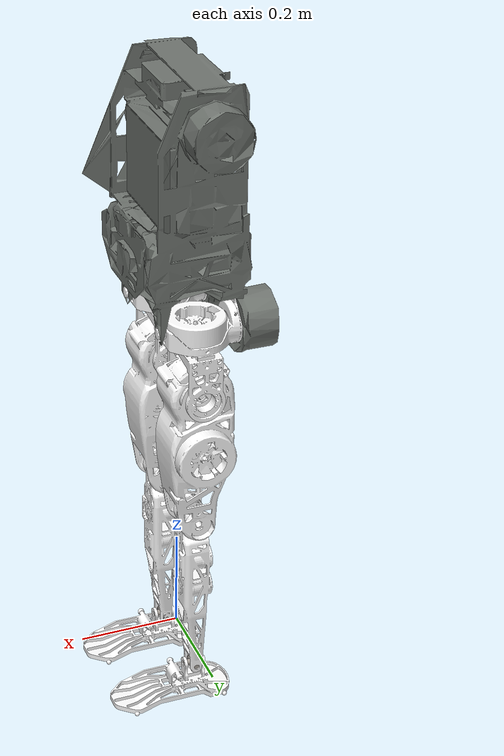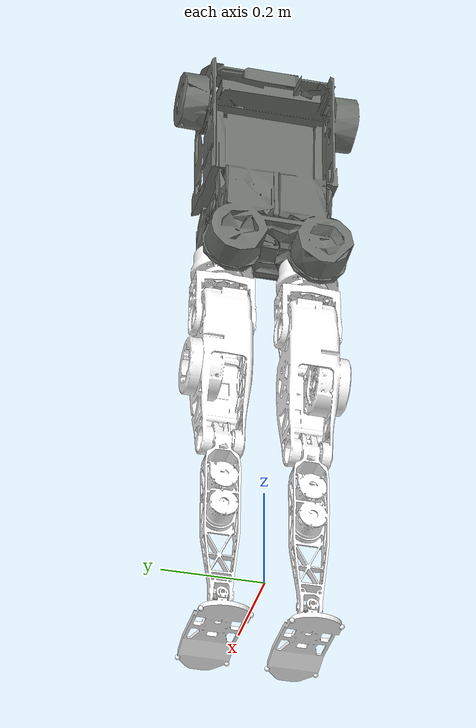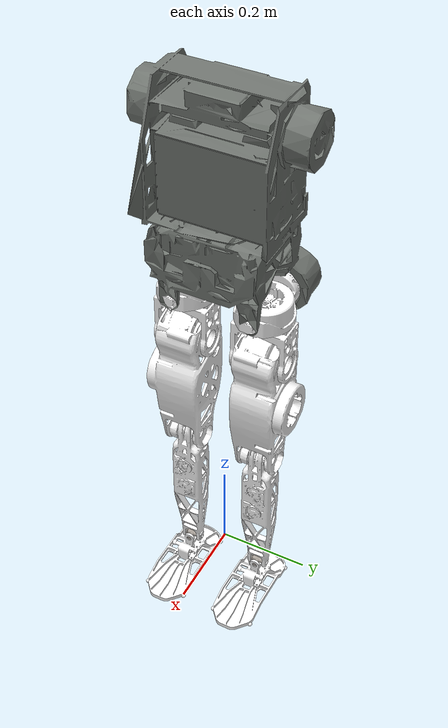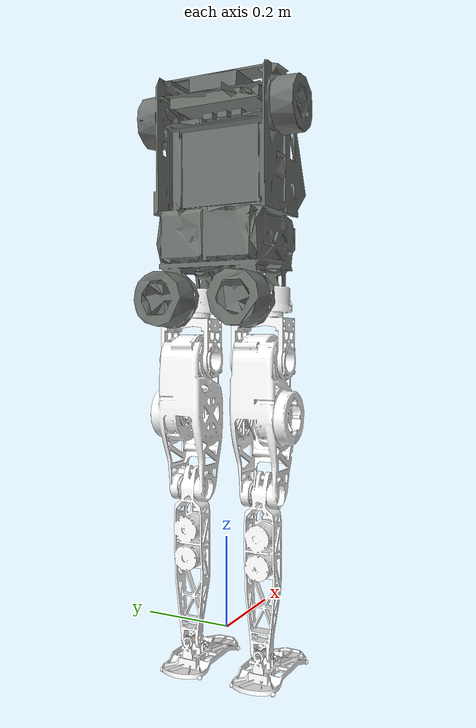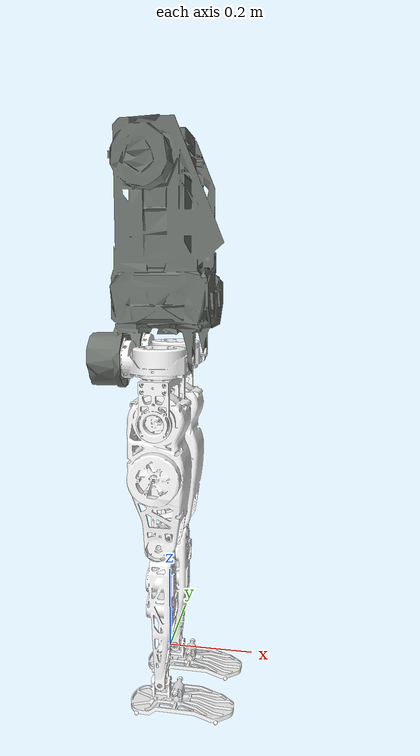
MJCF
<mujoco model="biped_s42">
  <compiler angle="radian" meshdir="../meshes/"/>
  <size njmax="500" nconmax="100" />

    <default>
        <joint limited='true'/>
    </default>

  <asset>
    <texture type="skybox" builtin="gradient" rgb1="0.4 0.6 0.8" width="128" height="128"/>
    <texture name="grid" type="2d" builtin="checker" rgb1=".1 .2 .3" rgb2=".2 .3 .4" width="300" height="300"/>
    <material name="grid" texture="grid" texrepeat="8 8" reflectance=".1"/>
    <mesh name="base_link" file="torso.STL"/>
    <mesh name="l_leg_roll" file="l_leg_roll.STL"/>
    <mesh name="l_leg_yaw" file="l_leg_yaw.STL"/>
    <mesh name="l_leg_pitch" file="l_leg_pitch.STL"/>
    <mesh name="l_knee" file="l_knee.STL"/>
    <mesh name="l_foot_pitch" file="l_foot_pitch.STL"/>
    <mesh name="l_foot_roll" file="l_foot_roll.STL"/>
    <mesh name="r_leg_roll" file="r_leg_roll.STL"/>
    <mesh name="r_leg_yaw" file="r_leg_yaw.STL"/>
    <mesh name="r_leg_pitch" file="r_leg_pitch.STL"/>
    <mesh name="r_knee" file="r_knee.STL"/>
    <mesh name="r_foot_pitch" file="r_foot_pitch.STL"/>
    <mesh name="r_foot_roll" file="r_foot_roll.STL"/>
  </asset>
  <worldbody>
    <body name="base_link" pos="0 0 0.78">
      <freejoint/>
      <inertial pos="-0.01463067 0.00469612 0.16216813" quat="1.00000  0.00000  0.00002 -0.00003" mass="27.34084316" diaginertia="0.51822329 0.42158804 0.19668875" />
      <geom type="mesh" contype="0" conaffinity="0" group="1"  rgba="0.43137 0.45098 0.43137 1" mesh="base_link"/>
      <geom type="mesh" rgba="0.75294 0.75294 0.75294 1" mesh="base_link" />
      <geom type="mesh" contype="0" conaffinity="0" group="1" density="0" rgba="0.75294 0.75294 0.75294 1" mesh="base_link"/>
      <geom type="mesh" rgba="0.75294 0.75294 0.75294 1" mesh="base_link"/>
      <site name="imu" pos="0 0 0"/>
      <body name="leg_l1_link" pos="-0.0024999 0.087 -0.066">
        <inertial pos="-0.00430148 -2.708e-05 -0.00851195" quat="0.00114226 0.692081 0.00279499 0.721814" mass="1.71093" diaginertia="0.00371121 0.00277272 0.00205799"/>
        <joint name="leg_l1_joint" pos="0 0 0" axis="1 0 0" range="-0.31416 0.66323" damping='0.2' />
        <geom type="mesh" contype="0" conaffinity="0" group="1" density="0" rgba="1 1 1 1" mesh="l_leg_roll"/>
        <body name="leg_l2_link">
          <inertial pos="0 -0.0032256 -0.0908087" quat="0.769899 0.638166 1.50247e-05 -1.35996e-05" mass="0.557629" diaginertia="0.00213816 0.00140333 0.00117498"/>
          <joint name="leg_l2_joint" pos="0 0 0" axis="0 0 1" range="-0.87266 0.7854" damping='0.2' />
          <geom type="mesh" contype="0" conaffinity="0" group="1" density="0" rgba="1 1 1 1" mesh="l_leg_yaw"/>
          <body name="leg_l3_link" pos="0 0 -0.1287">
            <inertial pos="0.00174541 0.0105687 -0.0827118" quat="0.714835 0.00573721 0.0258337 0.698793" mass="4.35641" diaginertia="0.0434446 0.0420103 0.0107374"/>
            <joint name="leg_l3_joint" pos="0 0 0" axis="0 1 0" range="-1.5708 2.0071" damping='0.2' />
            <geom type="mesh" contype="0" conaffinity="0" group="1" density="0" rgba="1 1 1 1" mesh="l_leg_pitch"/>
            <body name="leg_l4_link" pos="0 0 -0.284">
              <inertial pos="0.00665305 -7.928e-05 -0.111256" quat="0.999988 0.000491325 0.000347396 0.0048566" mass="1.50733" diaginertia="0.011037 0.0109512 0.000872235"/>
              <joint name="leg_l4_joint" pos="0 0 0" axis="0 1 0" range="0 2.618" damping='0.2' />
              <geom type="mesh" contype="0" conaffinity="0" group="1" density="0" rgba="1 1 1 1" mesh="l_knee"/>
              <body name="leg_l5_link" pos="0 0 -0.346">
                <inertial pos="0 0 0" quat="0.5 0.5 -0.5 0.5" mass="0.0719352" diaginertia="1.218e-05 6.92e-06 6.92e-06"/>
                <joint name="leg_l5_joint" pos="0 0 0" axis="0 1 0" range="-0.73304 0.73304" damping='0.2' />
                <geom type="mesh" contype="0" conaffinity="0" group="1" density="0" rgba="0.647059 0.619608 0.588235 1" mesh="l_foot_pitch"/>
                <body name="leg_l6_link">
                  <inertial pos="0.0373563 -2.2456e-06 -0.0394712" quat="-5.56125e-06 0.695064 1.15564e-05 0.718947" mass="0.493185" diaginertia="0.00175689 0.00161418 0.000380696"/>
                  <joint name="leg_l6_joint" pos="0 0 0" axis="1 0 0" range="-0.5236 0.5236" damping='0.2' />
                  <geom type="mesh" contype="0" conaffinity="0" group="1" density="0" rgba="1 1 1 1" mesh="l_foot_roll"/>
                  <geom size="0.005" pos="-0.04937 0.04773 -0.0593" contype="0" conaffinity="0" group="1" density="0" rgba="1 1 1 1"/>
                  <geom size="0.005" pos="-0.04937 0.04773 -0.0593" rgba="1 1 1 1"/>
                  <geom size="0.005" pos="-0.04937 -0.04773 -0.0593" contype="0" conaffinity="0" group="1" density="0" rgba="1 1 1 1"/>
                  <geom size="0.005" pos="-0.04937 -0.04773 -0.0593" rgba="1 1 1 1"/>
                  <geom size="0.005" pos="0.13564 0.04773 -0.0593" contype="0" conaffinity="0" group="1" density="0" rgba="1 1 1 1"/>
                  <geom size="0.005" pos="0.13564 0.04773 -0.0593" rgba="1 1 1 1"/>
                  <geom size="0.005" pos="0.13564 -0.04773 -0.0593" contype="0" conaffinity="0" group="1" density="0" rgba="1 1 1 1"/>
                  <geom size="0.005" pos="0.13564 -0.04773 -0.0593" rgba="1 1 1 1"/>
                </body>
              </body>
            </body>
          </body>
        </body>
      </body>
      <body name="leg_r1_link" pos="-0.0024999 -0.087 -0.066">
        <inertial pos="-0.00430146 2.709e-05 -0.00851195" quat="-0.00114226 0.692081 -0.00279499 0.721814" mass="1.71093" diaginertia="0.00371121 0.00277272 0.00205799"/>
        <joint name="leg_r1_joint" pos="0 0 0" axis="1 0 0" range="-0.31416 0.66323" damping='0.2' />
        <geom type="mesh" contype="0" conaffinity="0" group="1" density="0" rgba="1 1 1 1" mesh="r_leg_roll"/>
        <body name="leg_r2_link">
          <inertial pos="0 0.00322561 -0.0908087" quat="0.638166 0.769899 1.35996e-05 -1.50247e-05" mass="0.557629" diaginertia="0.00213816 0.00140333 0.00117498"/>
          <joint name="leg_r2_joint" pos="0 0 0" axis="0 0 1" range="-0.87266 0.7854" damping='0.2' />
          <geom type="mesh" contype="0" conaffinity="0" group="1" density="0" rgba="1 1 1 1" mesh="r_leg_yaw"/>
          <body name="leg_r3_link" pos="0 0 -0.1287">
            <inertial pos="0.00174536 -0.0105687 -0.0827122" quat="0.707489 0.0388467 -0.0111313 0.705568" mass="4.35641" diaginertia="0.0423135 0.0418974 0.0103197"/>
            <joint name="leg_r3_joint" pos="0 0 0" axis="0 1 0" range="-1.5708 2.0071" damping='0.2' />
            <geom type="mesh" contype="0" conaffinity="0" group="1" density="0" rgba="1 1 1 1" mesh="r_leg_pitch"/>
            <body name="leg_r4_link" pos="0 0 -0.284">
              <inertial pos="0.00665347 7.947e-05 -0.111257" quat="0.999988 -0.000492322 0.000349355 -0.00485685" mass="1.50736" diaginertia="0.0110371 0.0109514 0.000872255"/>
              <joint name="leg_r4_joint" pos="0 0 0" axis="0 1 0" range="0 2.618" damping='0.2' />
              <geom type="mesh" contype="0" conaffinity="0" group="1" density="0" rgba="1 1 1 1" mesh="r_knee"/>
              <body name="leg_r5_link" pos="0 0 -0.346">
                <inertial pos="0 0 0" quat="0.5 0.5 -0.5 0.5" mass="0.0719352" diaginertia="1.218e-05 6.92e-06 6.92e-06"/>
                <joint name="leg_r5_joint" pos="0 0 0" axis="0 1 0" range="-0.73304 0.73304" damping='0.2' />
                <geom type="mesh" contype="0" conaffinity="0" group="1" density="0" rgba="0.647059 0.619608 0.588235 1" mesh="r_foot_pitch"/>
                <body name="leg_r6_link">
                  <inertial pos="0.0373563 2.23567e-06 -0.0394712" quat="5.54609e-06 0.695065 -1.15774e-05 0.718947" mass="0.493185" diaginertia="0.00175689 0.00161418 0.000380696"/>
                  <joint name="leg_r6_joint" pos="0 0 0" axis="1 0 0" range="-0.5236 0.5236" damping='0.2' />
                  <geom type="mesh" contype="0" conaffinity="0" group="1" density="0" rgba="1 1 1 1" mesh="r_foot_roll"/>
                  <geom size="0.005" pos="-0.04937 0.04773 -0.0593" contype="0" conaffinity="0" group="1" density="0" rgba="1 1 1 1"/>
                  <geom size="0.005" pos="-0.04937 0.04773 -0.0593" rgba="1 1 1 1"/>
                  <geom size="0.005" pos="-0.04937 -0.04773 -0.0593" contype="0" conaffinity="0" group="1" density="0" rgba="1 1 1 1"/>
                  <geom size="0.005" pos="-0.04937 -0.04773 -0.0593" rgba="1 1 1 1"/>
                  <geom size="0.005" pos="0.13564 0.04773 -0.0593" contype="0" conaffinity="0" group="1" density="0" rgba="1 1 1 1"/>
                  <geom size="0.005" pos="0.13564 0.04773 -0.0593" rgba="1 1 1 1"/>
                  <geom size="0.005" pos="0.13564 -0.04773 -0.0593" contype="0" conaffinity="0" group="1" density="0" rgba="1 1 1 1"/>
                  <geom size="0.005" pos="0.13564 -0.04773 -0.0593" rgba="1 1 1 1"/>
                </body>
              </body>
            </body>
          </body>
        </body>
      </body>
    </body>
  </worldbody>
  <actuator>
        <motor gear="1" joint="leg_l1_joint" name="leg_l1_motor" ctrllimited="true"  ctrlrange='-150 150'/>
        <motor gear="1" joint="leg_l2_joint" name="leg_l2_motor" ctrllimited="true"  ctrlrange='-150 150'/>
        <motor gear="1" joint="leg_l3_joint" name="leg_l3_motor" ctrllimited="true"  ctrlrange='-200 200'/>
        <motor gear="1" joint="leg_l4_joint" name="leg_l4_motor" ctrllimited="true"  ctrlrange='-200 200'/>
        <motor gear="1" joint="leg_l5_joint" name="leg_l5_motor" ctrllimited="true"  ctrlrange='-90 90'/>
        <motor gear="1" joint="leg_l6_joint" name="leg_l6_motor" ctrllimited="true"  ctrlrange='-90 90'/>
        <motor gear="1" joint="leg_r1_joint" name="leg_r1_motor" ctrllimited="true"  ctrlrange='-150 150'/>
        <motor gear="1" joint="leg_r2_joint" name="leg_r2_motor" ctrllimited="true"  ctrlrange='-150 150'/>
        <motor gear="1" joint="leg_r3_joint" name="leg_r3_motor" ctrllimited="true"  ctrlrange='-200 200'/>
        <motor gear="1" joint="leg_r4_joint" name="leg_r4_motor" ctrllimited="true"  ctrlrange='-200 200'/>
        <motor gear="1" joint="leg_r5_joint" name="leg_r5_motor" ctrllimited="true"  ctrlrange='-90 90'/>
        <motor gear="1" joint="leg_r6_joint" name="leg_r6_motor" ctrllimited="true"  ctrlrange='-90 90'/>
  </actuator>
  <sensor>
      <framequat     name='orientation' objtype='site' objname='imu'/>
      <framepos     name='position' objtype='site' objname='imu'/>
      <gyro          name='angular-velocity'    site='imu' />
      <velocimeter   name='linear-velocity'     site='imu' />
      <accelerometer name='linear-acceleration' site='imu' />
      <magnetometer  name='magnetometer'        site='imu'/>

      <accelerometer name="BodyAcc" site="imu"/>
      <velocimeter name="BodyVel" site="imu"/>
      <gyro name="BodyGyro" site="imu"/>
      <framepos name="BodyPos" objtype="site" objname="imu"/>
      <framequat name="BodyQuat" objtype="site" objname="imu"/>
      <jointpos name="leg_l1_pos" joint="leg_l1_joint"/>
      <jointpos name="leg_l2_pos" joint="leg_l2_joint"/>
      <jointpos name="leg_l3_pos" joint="leg_l3_joint"/>
      <jointpos name="leg_l4_pos" joint="leg_l4_joint"/>
      <jointpos name="leg_l5_pos" joint="leg_l5_joint"/>
      <jointpos name="leg_l6_pos" joint="leg_l6_joint"/>
      <jointpos name="leg_r1_pos" joint="leg_r1_joint"/>
      <jointpos name="leg_r2_pos" joint="leg_r2_joint"/>
      <jointpos name="leg_r3_pos" joint="leg_r3_joint"/>
      <jointpos name="leg_r4_pos" joint="leg_r4_joint"/>
      <jointpos name="leg_r5_pos" joint="leg_r5_joint"/>
      <jointpos name="leg_r6_pos" joint="leg_r6_joint"/>
      <jointvel name="leg_l1_vel" joint="leg_l1_joint"/>
      <jointvel name="leg_l2_vel" joint="leg_l2_joint"/>
      <jointvel name="leg_l3_vel" joint="leg_l3_joint"/>
      <jointvel name="leg_l4_vel" joint="leg_l4_joint"/>
      <jointvel name="leg_l5_vel" joint="leg_l5_joint"/>
      <jointvel name="leg_l6_vel" joint="leg_l6_joint"/>
      <jointvel name="leg_r1_vel" joint="leg_r1_joint"/>
      <jointvel name="leg_r2_vel" joint="leg_r2_joint"/>
      <jointvel name="leg_r3_vel" joint="leg_r3_joint"/>
      <jointvel name="leg_r4_vel" joint="leg_r4_joint"/>
      <jointvel name="leg_r5_vel" joint="leg_r5_joint"/>
      <jointvel name="leg_r6_vel" joint="leg_r6_joint"/>
  </sensor>
</mujoco>
